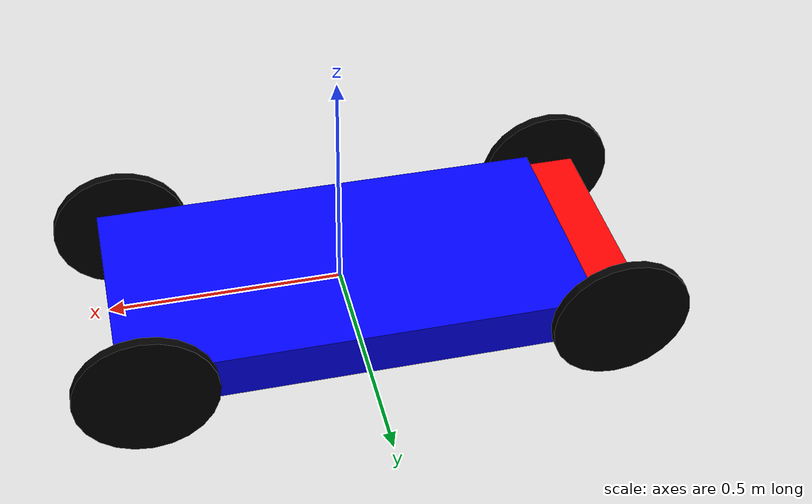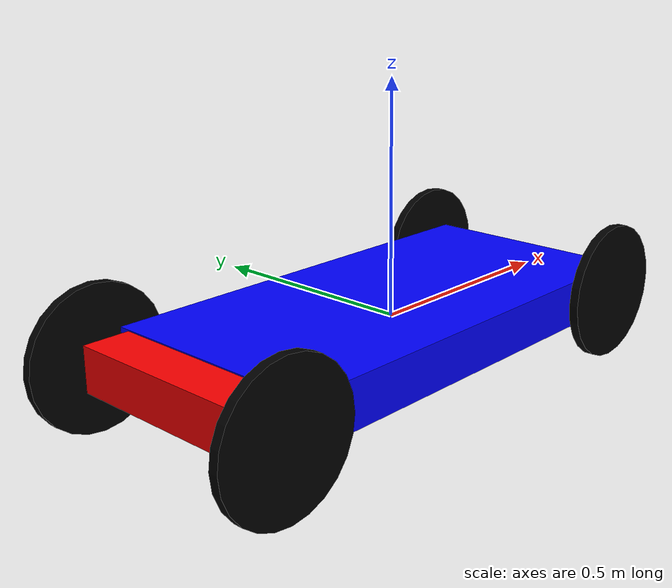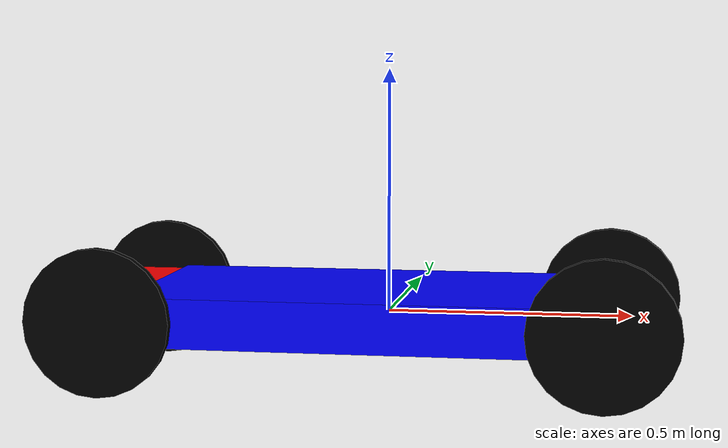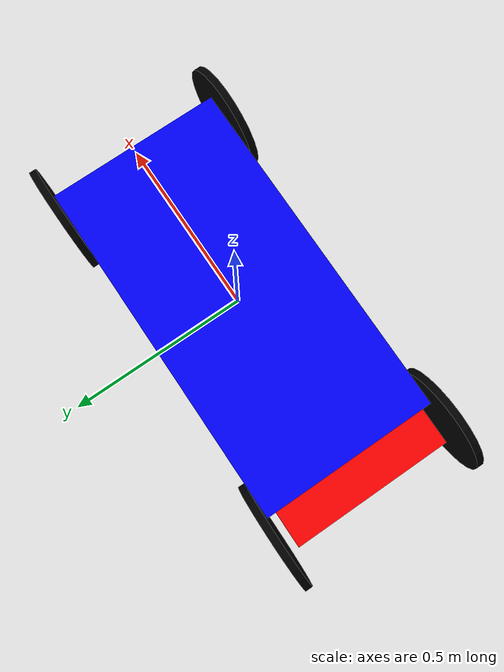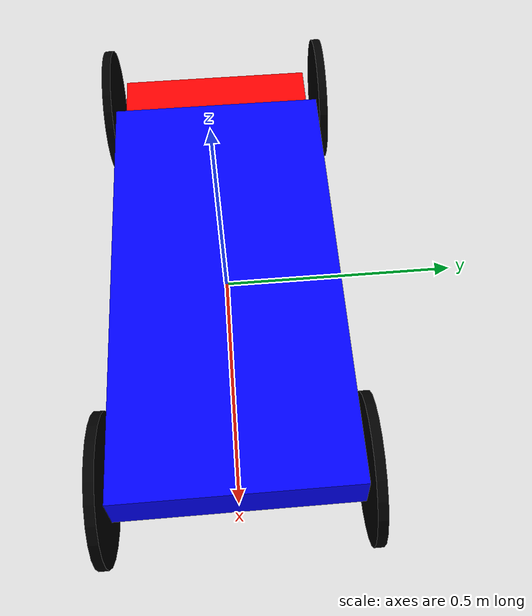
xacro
<?xml version="1.0"?>
<robot name="hybrid_robot" xmlns:xacro="http://ros.org/wiki/xacro">

    <xacro:property name="wheel_r" value="0.15"/>
    <xacro:property name="wheel_width" value="0.02"/>
    <xacro:property name="base_length" value="1"/>
    <xacro:property name="base_width" value="0.5"/>
    <xacro:property name="base_height" value="0.1"/>
    <xacro:property name="extension_length" value="1"/>
    <xacro:property name="extension_width" value="0.45"/>
    <xacro:property name="extension_height" value="0.095"/>

    <material name="black">
        <color rgba="0 0 0 1"/>
    </material>

    <material name="red">
        <color rgba="1 0 0 1"/>
    </material>

    <material name="blue">
        <color rgba="0 0 1 1"/>
    </material>

    <xacro:macro name="wheel" params="position side parent">

        <link name="${position}_${side}_wheel">
            <visual>
                <geometry>
                    <cylinder radius="${wheel_r}" length="${wheel_width}"/>
                </geometry>
                <material name="black"/>
            </visual>
            <collision>
                <geometry>
                    <cylinder radius="${wheel_r}" length="${wheel_width}"/>
                </geometry>
            </collision>
            <inertial>
                <mass value="1"/>
                <inertia ixx="0.005658333333333333" ixy="0" ixz="0" iyy="0.005658333333333333" iyz="0" izz="0.01125"/>
            </inertial>
        </link>
        <joint name="${position}_${side}_wheel_joint" type="continuous">
            <xacro:property name="origin_x" value="${base_length/2-0.05}"/>
            <xacro:if value="${position == 'back'}">
                <xacro:property name="origin_x" value="${-(base_length/2-0.05)}"/>
            </xacro:if>
            <xacro:property name="origin_y" value="${(base_width + wheel_width)/2}"/>
            <xacro:if value="${side == 'right'}">
                <xacro:property name="origin_y" value="${-(base_width + wheel_width)/2}"/>
            </xacro:if>
            <xacro:if value="${parent == 'extension'}">

            </xacro:if>
            <axis xyz="0 1 0" rpy="0 0 0"/>
            <parent link="${parent}"/>
            <child link="${position}_${side}_wheel"/>
            <origin xyz="${origin_x} ${origin_y} 0" rpy="${pi/2} 0 0"/>
        </joint>

    </xacro:macro>

    <link name="base">
        <visual>
            <geometry>
                <box size="${base_length} ${base_width}  ${base_height}"/>
            </geometry>
            <material name="blue"/>
        </visual>
        <collision>
            <geometry>
                <box size="${base_length} ${base_width}  ${base_height}"/>
            </geometry>
        </collision>
        <inertial>
            <mass value="10"/>
            <inertia ixx="0.21666666666666667" ixy="0" ixz="0" iyy="0.8416666666666667" iyz="0" izz="1.0416666666666665"/>
        </inertial>
    </link>

    <link name="extension">
        <visual>
            <geometry>
                <box size="${extension_length} ${extension_width} ${extension_height}"/>
            </geometry>
            <material name="red"/>
        </visual>
        <collision>
            <geometry>
                <box size="${extension_length} ${extension_width} ${extension_height}"/>
            </geometry>
        </collision>
        <inertial>
            <mass value="10"/>
            <inertia ixx="0.17627083333333335" ixy="0" ixz="0" iyy="0.8408541666666667" iyz="0" izz="1.0020833333333334"/>
        </inertial>
    </link>
    <joint name="extension_base_joint" type="prismatic">
        <axis xyz="1 0 0"/>
        <parent link="base"/>
        <child link="extension"/>
        <origin xyz="-0.1 0 0"/>
        <limit lower="-0.9" upper="0" effort="100" velocity="10"/>
    </joint>

    <xacro:wheel position="front" side="right" parent="base"/>
    <xacro:wheel position="front" side="left" parent="base"/>
    <xacro:wheel position="back" side="right" parent="extension"/>
    <xacro:wheel position="back" side="left" parent="extension"/>

    <transmission name="trans_extension_base_joint">
        <type>transmission_interface/SimpleTransmission</type>
        <joint name="extension_base_joint">
            <hardwareInterface>hardware_interface/EffortJointInterface</hardwareInterface>
        </joint>
        <actuator name="extension_base_joint_motor">
            <hardwareInterface>hardware_interface/EffortJointInterface</hardwareInterface>
            <mechanicalReduction>1</mechanicalReduction>
        </actuator>
    </transmission>
    <transmission name="trans_front_right_wheel_joint">
        <type>transmission_interface/SimpleTransmission</type>
        <joint name="front_right_wheel_joint">
            <hardwareInterface>hardware_interface/EffortJointInterface</hardwareInterface>
        </joint>
        <actuator name="front_right_wheel_joint_motor">
            <hardwareInterface>hardware_interface/EffortJointInterface</hardwareInterface>
            <mechanicalReduction>1</mechanicalReduction>
        </actuator>
    </transmission>
    <transmission name="trans_front_left_wheel_joint">
        <type>transmission_interface/SimpleTransmission</type>
        <joint name="front_left_wheel_joint">
            <hardwareInterface>hardware_interface/EffortJointInterface</hardwareInterface>
        </joint>
        <actuator name="front_left_wheel_joint_motor">
            <hardwareInterface>hardware_interface/EffortJointInterface</hardwareInterface>
            <mechanicalReduction>1</mechanicalReduction>
        </actuator>
    </transmission>
    <transmission name="trans_back_right_wheel_joint">
        <type>transmission_interface/SimpleTransmission</type>
        <joint name="back_right_wheel_joint">
            <hardwareInterface>hardware_interface/EffortJointInterface</hardwareInterface>
        </joint>
        <actuator name="back_right_wheel_joint_motor">
            <hardwareInterface>hardware_interface/EffortJointInterface</hardwareInterface>
            <mechanicalReduction>1</mechanicalReduction>
        </actuator>
    </transmission>
    <transmission name="trans_back_left_wheel_joint">
        <type>transmission_interface/SimpleTransmission</type>
        <joint name="back_left_wheel_joint">
            <hardwareInterface>hardware_interface/EffortJointInterface</hardwareInterface>
        </joint>
        <actuator name="back_left_wheel_joint_motor">
            <hardwareInterface>hardware_interface/EffortJointInterface</hardwareInterface>
            <mechanicalReduction>1</mechanicalReduction>
        </actuator>
    </transmission>
    <gazebo>
        <plugin filename="libgazebo_ros_control.so" name="gazebo_ros_control">
            <robotNamespace>/hybrid_robot</robotNamespace>
        </plugin>
    </gazebo>
    <transmission name="trans_extension_base_joint">
        <type>transmission_interface/SimpleTransmission</type>
        <joint name="extension_base_joint">
            <hardwareInterface>hardware_interface/EffortJointInterface</hardwareInterface>
        </joint>
        <actuator name="extension_base_joint_motor">
            <hardwareInterface>hardware_interface/EffortJointInterface</hardwareInterface>
            <mechanicalReduction>1</mechanicalReduction>
        </actuator>
    </transmission>
    <transmission name="trans_front_right_wheel_joint">
        <type>transmission_interface/SimpleTransmission</type>
        <joint name="front_right_wheel_joint">
            <hardwareInterface>hardware_interface/EffortJointInterface</hardwareInterface>
        </joint>
        <actuator name="front_right_wheel_joint_motor">
            <hardwareInterface>hardware_interface/EffortJointInterface</hardwareInterface>
            <mechanicalReduction>1</mechanicalReduction>
        </actuator>
    </transmission>
    <transmission name="trans_front_left_wheel_joint">
        <type>transmission_interface/SimpleTransmission</type>
        <joint name="front_left_wheel_joint">
            <hardwareInterface>hardware_interface/EffortJointInterface</hardwareInterface>
        </joint>
        <actuator name="front_left_wheel_joint_motor">
            <hardwareInterface>hardware_interface/EffortJointInterface</hardwareInterface>
            <mechanicalReduction>1</mechanicalReduction>
        </actuator>
    </transmission>
    <transmission name="trans_back_right_wheel_joint">
        <type>transmission_interface/SimpleTransmission</type>
        <joint name="back_right_wheel_joint">
            <hardwareInterface>hardware_interface/EffortJointInterface</hardwareInterface>
        </joint>
        <actuator name="back_right_wheel_joint_motor">
            <hardwareInterface>hardware_interface/EffortJointInterface</hardwareInterface>
            <mechanicalReduction>1</mechanicalReduction>
        </actuator>
    </transmission>
    <transmission name="trans_back_left_wheel_joint">
        <type>transmission_interface/SimpleTransmission</type>
        <joint name="back_left_wheel_joint">
            <hardwareInterface>hardware_interface/EffortJointInterface</hardwareInterface>
        </joint>
        <actuator name="back_left_wheel_joint_motor">
            <hardwareInterface>hardware_interface/EffortJointInterface</hardwareInterface>
            <mechanicalReduction>1</mechanicalReduction>
        </actuator>
    </transmission>
    <gazebo>
        <plugin filename="libgazebo_ros_control.so" name="gazebo_ros_control">
            <robotNamespace>/hybrid_robot</robotNamespace>
        </plugin>
    </gazebo>
    <transmission name="trans_extension_base_joint">
        <type>transmission_interface/SimpleTransmission</type>
        <joint name="extension_base_joint">
            <hardwareInterface>hardware_interface/EffortJointInterface</hardwareInterface>
        </joint>
        <actuator name="extension_base_joint_motor">
            <hardwareInterface>hardware_interface/EffortJointInterface</hardwareInterface>
            <mechanicalReduction>1</mechanicalReduction>
        </actuator>
    </transmission>
    <transmission name="trans_front_right_wheel_joint">
        <type>transmission_interface/SimpleTransmission</type>
        <joint name="front_right_wheel_joint">
            <hardwareInterface>hardware_interface/EffortJointInterface</hardwareInterface>
        </joint>
        <actuator name="front_right_wheel_joint_motor">
            <hardwareInterface>hardware_interface/EffortJointInterface</hardwareInterface>
            <mechanicalReduction>1</mechanicalReduction>
        </actuator>
    </transmission>
    <transmission name="trans_front_left_wheel_joint">
        <type>transmission_interface/SimpleTransmission</type>
        <joint name="front_left_wheel_joint">
            <hardwareInterface>hardware_interface/EffortJointInterface</hardwareInterface>
        </joint>
        <actuator name="front_left_wheel_joint_motor">
            <hardwareInterface>hardware_interface/EffortJointInterface</hardwareInterface>
            <mechanicalReduction>1</mechanicalReduction>
        </actuator>
    </transmission>
    <transmission name="trans_back_right_wheel_joint">
        <type>transmission_interface/SimpleTransmission</type>
        <joint name="back_right_wheel_joint">
            <hardwareInterface>hardware_interface/EffortJointInterface</hardwareInterface>
        </joint>
        <actuator name="back_right_wheel_joint_motor">
            <hardwareInterface>hardware_interface/EffortJointInterface</hardwareInterface>
            <mechanicalReduction>1</mechanicalReduction>
        </actuator>
    </transmission>
    <transmission name="trans_back_left_wheel_joint">
        <type>transmission_interface/SimpleTransmission</type>
        <joint name="back_left_wheel_joint">
            <hardwareInterface>hardware_interface/EffortJointInterface</hardwareInterface>
        </joint>
        <actuator name="back_left_wheel_joint_motor">
            <hardwareInterface>hardware_interface/EffortJointInterface</hardwareInterface>
            <mechanicalReduction>1</mechanicalReduction>
        </actuator>
    </transmission>
    <gazebo>
        <plugin name="gazebo_ros_control" filename="libgazebo_ros_control.so">
            <robotNamespace>/</robotNamespace>
        </plugin>
    </gazebo>

</robot>
